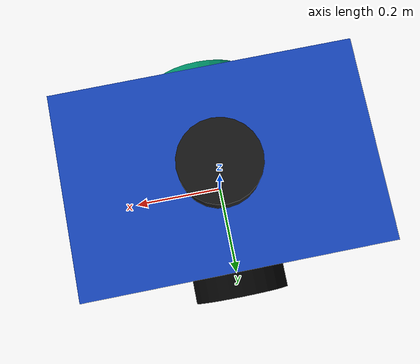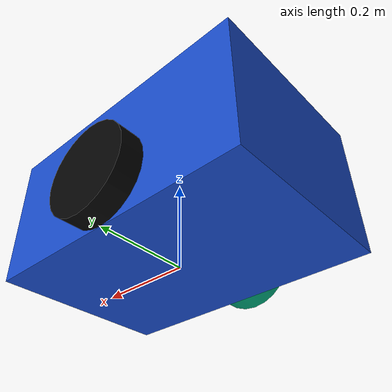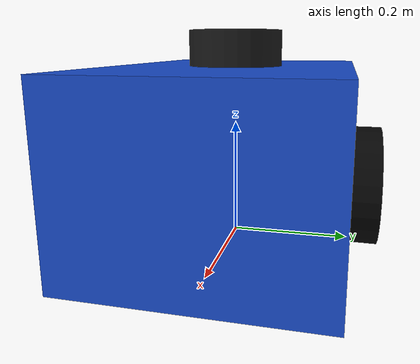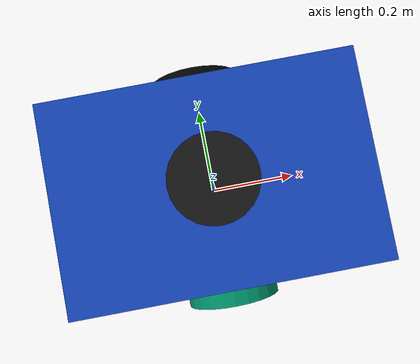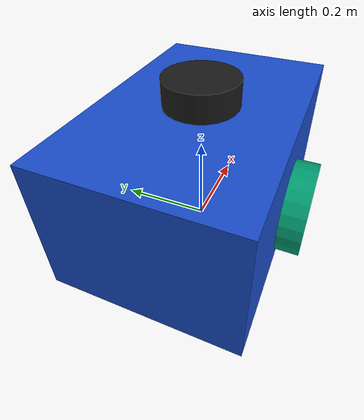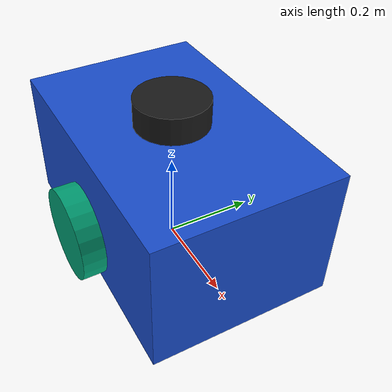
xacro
<?xml version="1.0"?>
<robot xmlns:xacro="http://www.ros.org/wiki/xacro"
       name="autonomous_search_robot">

    <!-- Base Link                 -->

    <link name="base_link">

        <inertial>

            <origin xyz="0 0 0.15" rpy="0 0 0"/>

            <mass value="5.0"/>

            <inertia
                ixx="0.1042"
                ixy="0.0"
                ixz="0.0"
                iyy="0.1875"
                iyz="0.0"
                izz="0.2167"/>

        </inertial>

        <visual>
            <origin xyz="0 0 0.15" rpy="0 0 0"/>

            <geometry>
                <box size="0.60 0.40 0.30"/>
            </geometry>

            <material name="robot_body">
                <color rgba="0.1 0.3 0.8 1.0"/>
            </material>

        </visual>

        <collision>
            <origin xyz="0 0 0.15" rpy="0 0 0"/>

            <geometry>
                <box size="0.60 0.40 0.30"/>
            </geometry>
        </collision>

    </link>

    <!-- Left Wheel                -->

    <link name="left_wheel">

        <inertial>

            <origin xyz="0 0 0" rpy="0 0 0"/>

            <mass value="0.5"/>

            <inertia
                ixx="0.001354"
                ixy="0.0"
                ixz="0.0"
                iyy="0.0025"
                iyz="0.0"
                izz="0.001354"/>

        </inertial>

        <visual>
            <origin xyz="0 0 0" rpy="1.5708 0 0"/>

            <geometry>
                <cylinder radius="0.10" length="0.05"/>
            </geometry>

            <material name="rubber">
                <color rgba="0.02 0.02 0.02 1.0"/>
            </material>

            </visual>

        <collision>
            <origin xyz="0 0 0" rpy="1.5708 0 0"/>

            <geometry>
                <cylinder radius="0.10" length="0.05"/>
            </geometry>
        </collision>

    </link>

    <!-- Right Wheel               -->

    <link name="right_wheel">

        <inertial>

            <origin xyz="0 0 0" rpy="0 0 0"/>

            <mass value="0.5"/>

            <inertia
                ixx="0.001354"
                ixy="0.0"
                ixz="0.0"
                iyy="0.0025"
                iyz="0.0"
                izz="0.001354"/>

        </inertial>

        <visual>
            <origin xyz="0 0 0" rpy="1.5708 0 0"/>

            <geometry>
                <cylinder radius="0.10" length="0.05"/>
            </geometry>
        </visual>

        <collision>
            <origin xyz="0 0 0" rpy="1.5708 0 0"/>

            <geometry>
                <cylinder radius="0.10" length="0.05"/>
            </geometry>
        </collision>

    </link>

    <!-- Left Wheel Joint          -->

    <joint name="left_wheel_joint" type="continuous">

        <parent link="base_link"/>
        <child link="left_wheel"/>

        <origin xyz="0 0.225 0.10" rpy="0 0 0"/>

            <axis xyz="0 1 0"/>

    </joint>

    <!-- Right Wheel Joint         -->

    <joint name="right_wheel_joint" type="continuous">

        <parent link="base_link"/>
        <child link="right_wheel"/>

        <origin xyz="0 -0.225 0.10" rpy="0 0 0"/>

            <axis xyz="0 1 0"/>

    </joint>

    <!-- Wheel contact friction -->
    <gazebo reference="left_wheel">
        <mu1>1.0</mu1>
        <mu2>1.0</mu2>
    </gazebo>

    <gazebo reference="right_wheel">
        <mu1>1.0</mu1>
        <mu2>1.0</mu2>
    </gazebo>

    <!-- ROS 2 Control / Gazebo    -->

    <ros2_control name="GazeboSystem" type="system">

        <hardware>
            <plugin>gz_ros2_control/GazeboSimSystem</plugin>
        </hardware>

        <joint name="left_wheel_joint">
            <command_interface name="velocity">
                <param name="min">-10.0</param>
                <param name="max">10.0</param>
            </command_interface>

            <state_interface name="position"/>
            <state_interface name="velocity"/>
        </joint>

        <joint name="right_wheel_joint">
            <command_interface name="velocity">
                <param name="min">-10.0</param>
                <param name="max">10.0</param>
            </command_interface>

            <state_interface name="position"/>
            <state_interface name="velocity"/>
        </joint>

    </ros2_control>

    <gazebo>

        <plugin
            filename="gz_ros2_control-system"
            name="gz_ros2_control::GazeboSimROS2ControlPlugin">

            <parameters>$(find robot_core)/config/controllers.yaml</parameters>

            <controller_manager_name>controller_manager</controller_manager_name>

        </plugin>

    </gazebo>
    <!-- LiDAR -->

    <link name="lidar_link">

        <visual>
            <origin xyz="0 0 0" rpy="0 0 0"/>

            <geometry>
                <cylinder radius="0.08" length="0.06"/>
            </geometry>

            <material name="lidar_material">
                <color rgba="0.1 0.1 0.1 1.0"/>
            </material>

        </visual>

    </link>

    <joint name="lidar_joint" type="fixed">

        <parent link="base_link"/>
        <child link="lidar_link"/>

        <origin xyz="0 0 0.33" rpy="0 0 0"/>

    </joint>

    <!-- Gazebo LiDAR sensor -->

    <gazebo reference="lidar_link">

        <sensor name="lidar_sensor" type="gpu_lidar">

            <topic>/scan</topic>

            <gz_frame_id>lidar_link</gz_frame_id>

            <update_rate>10</update_rate>

            <ray>

                <scan>

                    <horizontal>

                        <samples>360</samples>
                        <resolution>1</resolution>

                        <min_angle>-3.14159</min_angle>
                        <max_angle>3.14159</max_angle>

                    </horizontal>

                </scan>

                <range>

                    <min>0.12</min>
                    <max>12.0</max>
                    <resolution>0.01</resolution>

                </range>

            </ray>

            <always_on>true</always_on>

            <visualize>true</visualize>

        </sensor>

    </gazebo>

    <!-- IMU -->

    <link name="imu_link">

        <visual>
            <origin xyz="0 0 0" rpy="0 0 0"/>

            <geometry>
                <box size="0.08 0.08 0.04"/>
            </geometry>

            <material name="imu_material">
                <color rgba="0.8 0.8 0.1 1.0"/>
            </material>

        </visual>

    </link>

    <joint name="imu_joint" type="fixed">

        <parent link="base_link"/>
        <child link="imu_link"/>

        <origin xyz="0 0 0.20" rpy="0 0 0"/>

    </joint>

        <!-- Gazebo IMU sensor -->

    <gazebo reference="imu_link">

        <sensor name="imu_sensor" type="imu">

            <gz_frame_id>imu_link</gz_frame_id>

            <always_on>true</always_on>
            <update_rate>50</update_rate>

            <imu>
                <angular_velocity>
                    <x>
                        <noise type="gaussian">
                            <mean>0.0</mean>
                            <stddev>0.0</stddev>
                        </noise>
                    </x>
                    <y>
                        <noise type="gaussian">
                            <mean>0.0</mean>
                            <stddev>0.0</stddev>
                        </noise>
                    </y>
                    <z>
                        <noise type="gaussian">
                            <mean>0.0</mean>
                            <stddev>0.0</stddev>
                        </noise>
                    </z>
                </angular_velocity>

                <linear_acceleration>
                    <x>
                        <noise type="gaussian">
                            <mean>0.0</mean>
                            <stddev>0.0</stddev>
                        </noise>
                    </x>
                    <y>
                        <noise type="gaussian">
                            <mean>0.0</mean>
                            <stddev>0.0</stddev>
                        </noise>
                    </y>
                    <z>
                        <noise type="gaussian">
                            <mean>0.0</mean>
                            <stddev>0.0</stddev>
                        </noise>
                    </z>
                </linear_acceleration>
            </imu>

            <topic>/imu</topic>
            <visualize>true</visualize>
        </sensor>

    </gazebo>

</robot>
